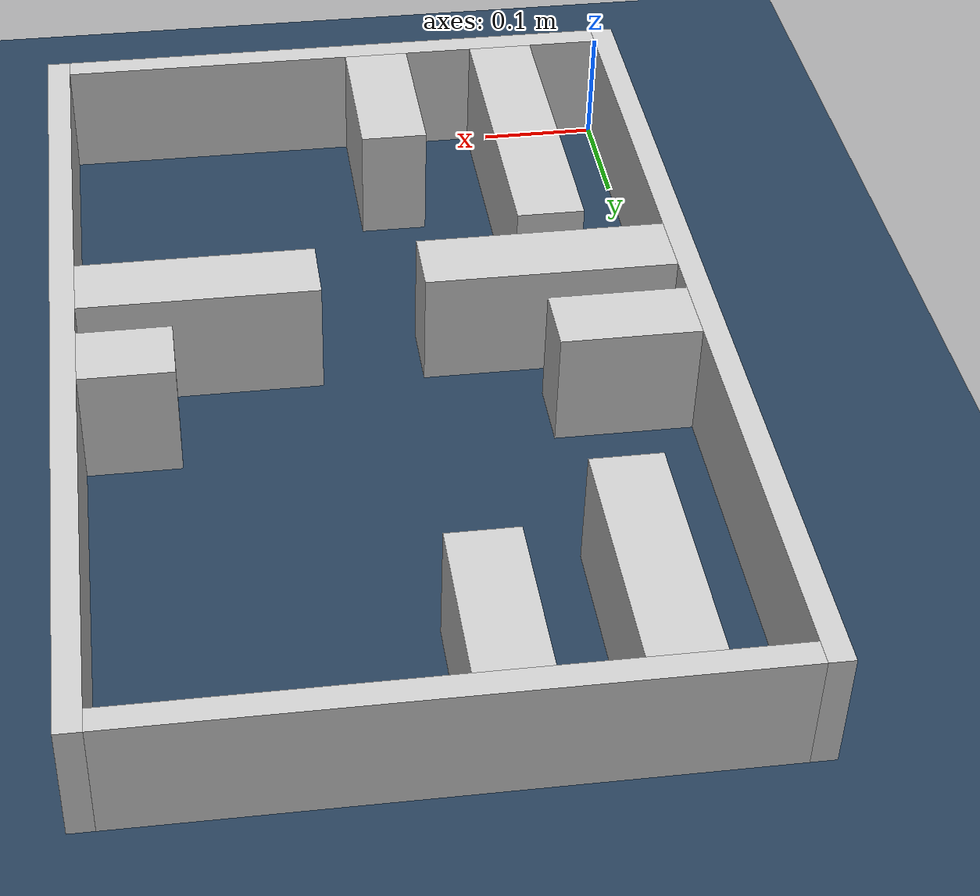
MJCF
<?xml version="1.0" ?>
<mujoco model="generated_real_template">
  <compiler angle="degree"/>
  <option timestep="0.002" integrator="implicitfast" iterations="100" cone="elliptic"/>
  <default>
    <geom density="1"/>
  </default>
  <asset>
    <texture builtin="gradient" height="3072" rgb1="0.3 0.5 0.7" rgb2="0 0 0" type="skybox" width="512"/>
    <texture builtin="checker" height="300" mark="edge" markrgb="0.8 0.8 0.8" name="groundplane" rgb1="0.2 0.3 0.4" rgb2="0.1 0.2 0.3" type="2d" width="300"/>
    <material name="groundplane" reflectance="0.2" texrepeat="5 5" texture="groundplane" texuniform="true"/>
  </asset>
  <worldbody>
    <light dir="0 0 -1" directional="true" pos="0 0 1.5"/>
    <geom name="floor" type="plane" condim="4" friction="0.5 0.005 0.001" material="groundplane" size="0 0 0.05"/>
    <body name="walls">
      <geom name="wall_boundary_left" type="box" condim="4" friction="1.0 0.005 0.0001" rgba="0.8 0.8 0.8 1" pos="-0.010000 0.387500 0.050000" euler="0 0 0.000000" size="0.010000 0.407500 0.050000"/>
      <geom name="wall_boundary_right" type="box" condim="4" friction="1.0 0.005 0.0001" rgba="0.8 0.8 0.8 1" pos="0.500000 0.387500 0.050000" euler="0 0 0.000000" size="0.010000 0.407500 0.050000"/>
      <geom name="wall_boundary_bottom" type="box" condim="4" friction="1.0 0.005 0.0001" rgba="0.8 0.8 0.8 1" pos="0.245000 -0.010000 0.050000" euler="0 0 0.000000" size="0.245000 0.010000 0.050000"/>
      <geom name="wall_boundary_top" type="box" condim="4" friction="1.0 0.005 0.0001" rgba="0.8 0.8 0.8 1" pos="0.245000 0.785000 0.050000" euler="0 0 0.000000" size="0.245000 0.010000 0.050000"/>
      <geom name="wall_inner_1_1" type="box" condim="4" friction="1.0 0.005 0.0001" rgba="0.8 0.8 0.8 1" pos="0.090213 0.134777 0.050000" euler="0 0 90.000000" size="0.134777 0.028500 0.050000"/>
      <geom name="wall_inner_1_2" type="box" condim="4" friction="1.0 0.005 0.0001" rgba="0.8 0.8 0.8 1" pos="0.090213 0.676137 0.050000" euler="0 0 90.000000" size="0.098863 0.028500 0.050000"/>
      <geom name="wall_inner_2_1" type="box" condim="4" friction="1.0 0.005 0.0001" rgba="0.8 0.8 0.8 1" pos="0.206974 0.069476 0.050000" euler="0 0 90.000000" size="0.069476 0.028500 0.050000"/>
      <geom name="wall_inner_2_2" type="box" condim="4" friction="1.0 0.005 0.0001" rgba="0.8 0.8 0.8 1" pos="0.206974 0.708464 0.050000" euler="0 0 90.000000" size="0.066536 0.028500 0.050000"/>
      <geom name="wall_inner_3_1" type="box" condim="4" friction="1.0 0.005 0.0001" rgba="0.8 0.8 0.8 1" pos="0.104118 0.323393 0.050000" euler="0 0 0.000000" size="0.104118 0.028500 0.050000"/>
      <geom name="wall_inner_3_2" type="box" condim="4" friction="1.0 0.005 0.0001" rgba="0.8 0.8 0.8 1" pos="0.391245 0.323393 0.050000" euler="0 0 0.000000" size="0.098755 0.028500 0.050000"/>
      <geom name="wall_inner_4_1" type="box" condim="4" friction="1.0 0.005 0.0001" rgba="0.8 0.8 0.8 1" pos="0.056825 0.412144 0.050000" euler="0 0 0.000000" size="0.056825 0.028500 0.050000"/>
      <geom name="wall_inner_4_2" type="box" condim="4" friction="1.0 0.005 0.0001" rgba="0.8 0.8 0.8 1" pos="0.451884 0.412144 0.050000" euler="0 0 0.000000" size="0.038116 0.028500 0.050000"/>
    </body>
  </worldbody>
</mujoco>
